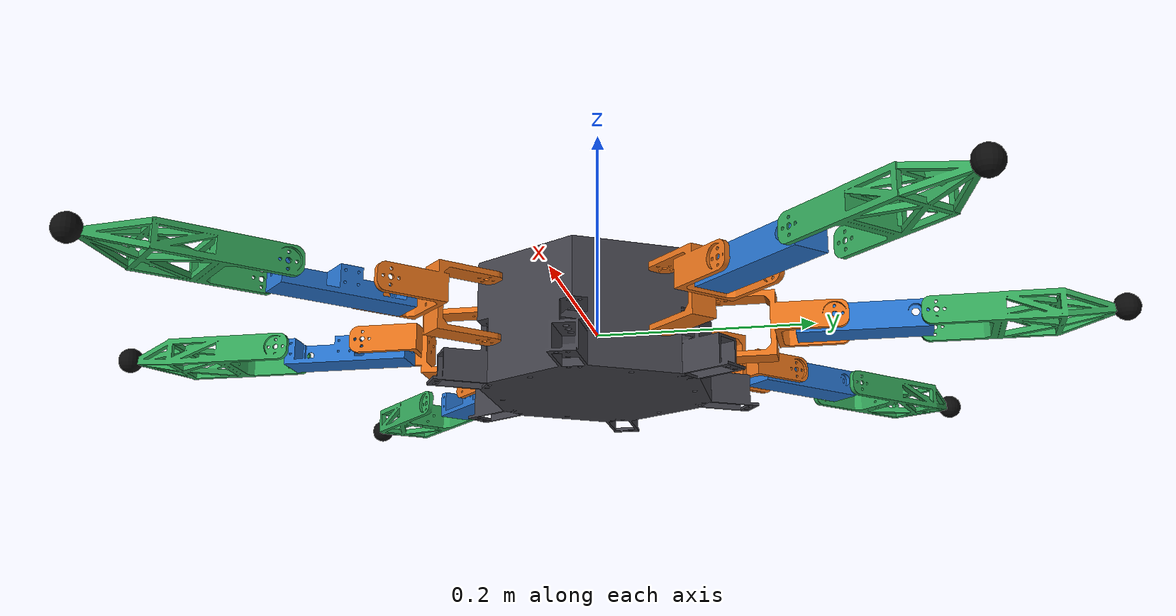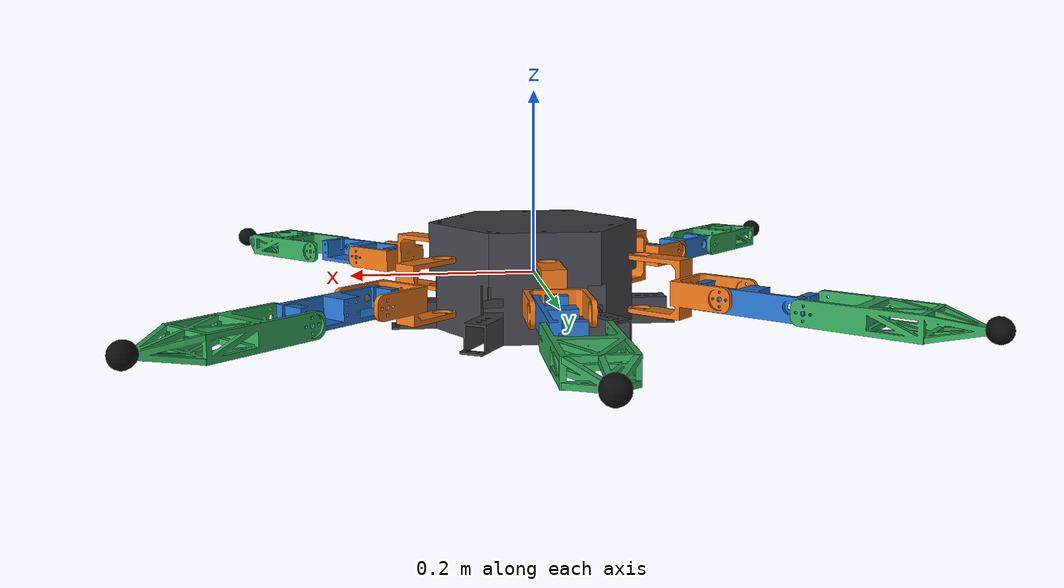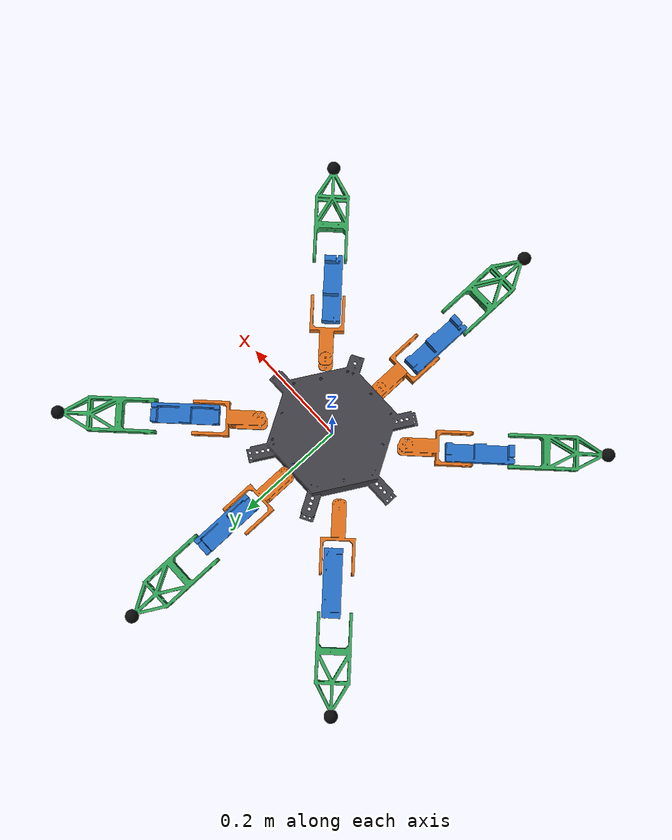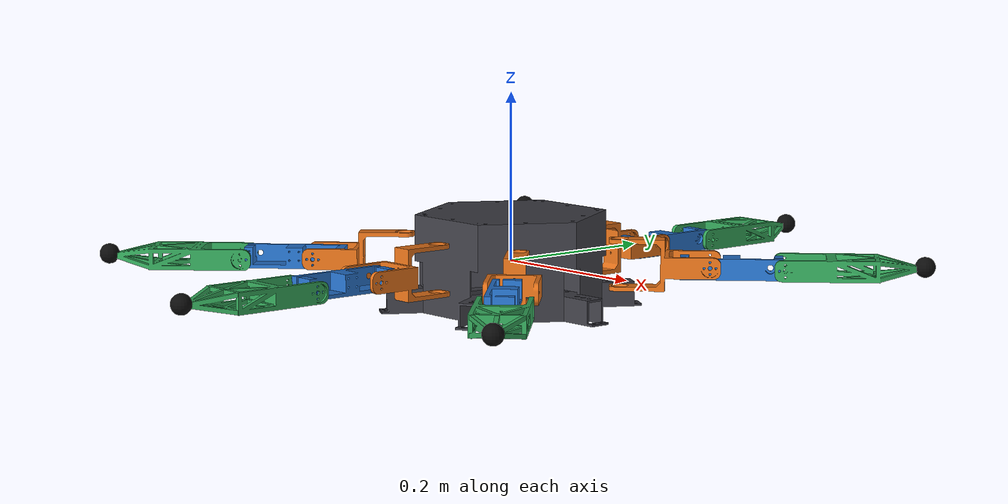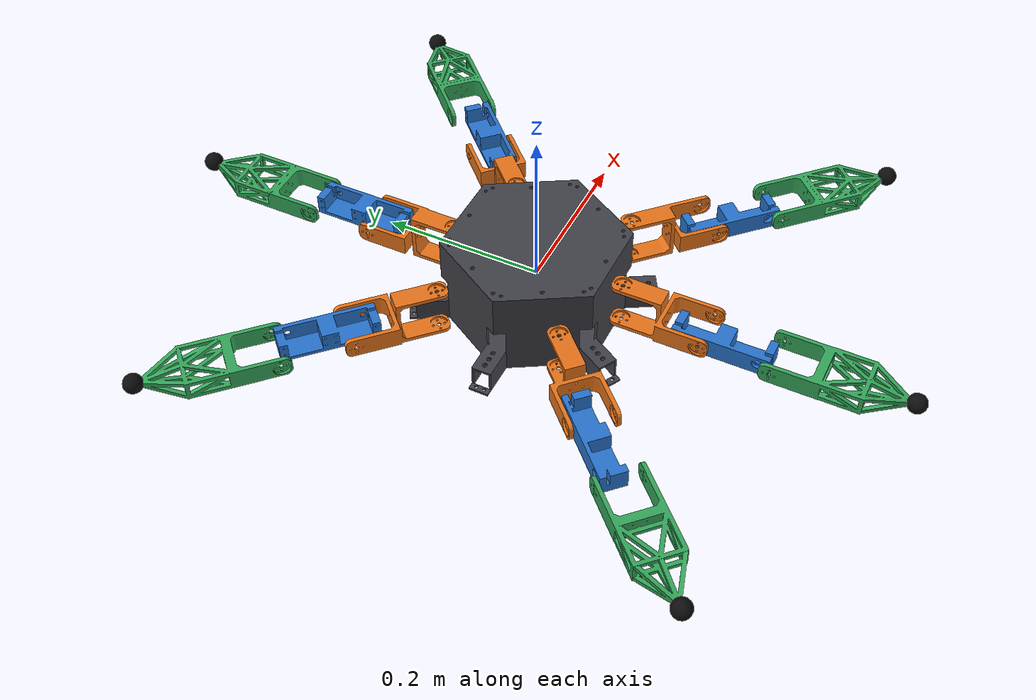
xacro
<?xml version="1.0"?>
<robot xmlns:xacro="http://www.ros.org/wiki/xacro" name="hexapod">

  <!-- Order matters: properties and macros must be defined before use. -->
  <xacro:include filename="$(find hexapod_description)/urdf/common_properties.xacro"/>
  <xacro:include filename="$(find hexapod_description)/urdf/leg_macro.xacro"/>

  <!-- Hardware abstraction. Gated so that RViz-only workflows and any future
       hardware bringup do not drag in the Gazebo plugin. Pass
       sim:=false to omit it. -->
  <xacro:arg name="control_mode" default="effort"/>

  <xacro:arg name="sim" default="true"/>
  <xacro:if value="$(arg sim)">
    <xacro:include filename="$(find hexapod_description)/urdf/hexapod.ros2_control.xacro"/>
    <xacro:include filename="$(find hexapod_description)/urdf/hexapod.gazebo.xacro"/>
  </xacro:if>

  <xacro:arg name="fix_base" default="false"/>
  <xacro:arg name="fix_base_height" default="0.125"/>
  <xacro:if value="$(arg fix_base)">
    <link name="world"/>
    <joint name="world_to_base" type="fixed">
      <parent link="world"/>
      <child link="base_link"/>
      <origin xyz="0 0 $(arg fix_base_height)" rpy="0 0 0"/>
    </joint>
  </xacro:if>

  <!-- ====================================================================
       BODY
  ==================================================================== -->
  <link name="base_link">
    <xacro:if value="${use_meshes}">
      <visual>
        <origin xyz="${body_mesh_nudge}" rpy="${body_mesh_rpy}"/>
        <geometry>
          <mesh filename="${mesh_dir}/body.stl" scale="${mesh_scale}"/>
        </geometry>
        <material name="body_grey"/>
      </visual>
    </xacro:if>
    <xacro:unless value="${use_meshes}">
      <visual>
        <origin xyz="0 0 0" rpy="0 0 0"/>
        <geometry>
          <box size="${body_length} ${body_width} ${body_height}"/>
        </geometry>
        <material name="body_grey"/>
      </visual>
    </xacro:unless>

    <collision>
      <origin xyz="0 0 0" rpy="0 0 0"/>
      <geometry>
        <box size="${body_length} ${body_width} ${body_height}"/>
      </geometry>
    </collision>

    <xacro:inertial_box mass="${body_mass}"
                        x="${body_length}" y="${body_width}" z="${body_height}">
      <origin xyz="0 0 0" rpy="0 0 0"/>
    </xacro:inertial_box>
  </link>

  <gazebo reference="base_link">
    <xacro:if value="${demo_mode}"><gravity>0</gravity></xacro:if>
    <material>Gazebo/DarkGrey</material>
  </gazebo>

  <!-- LEFT SIDE -->
  <xacro:hexapod_leg prefix="lf"
                     mount_x="${mount_x_front}"
                     mount_y="${mount_y_front}"
                     mount_z="${mount_z}"
                     mount_yaw="${mount_yaw_front}"/>

  <xacro:hexapod_leg prefix="lm"
                     mount_x="${mount_x_mid}"
                     mount_y="${mount_y_mid}"
                     mount_z="${mount_z}"
                     mount_yaw="${mount_yaw_mid}"/>

  <xacro:hexapod_leg prefix="lr"
                     mount_x="${mount_x_rear}"
                     mount_y="${mount_y_rear}"
                     mount_z="${mount_z}"
                     mount_yaw="${mount_yaw_rear}"/>

  <!-- RIGHT SIDE -->
  <xacro:hexapod_leg prefix="rf"
                     mount_x="${mount_x_front}"
                     mount_y="${-mount_y_front}"
                     mount_z="${mount_z}"
                     mount_yaw="${-mount_yaw_front}"/>

  <xacro:hexapod_leg prefix="rm"
                     mount_x="${mount_x_mid}"
                     mount_y="${-mount_y_mid}"
                     mount_z="${mount_z}"
                     mount_yaw="${-mount_yaw_mid}"/>

  <xacro:hexapod_leg prefix="rr"
                     mount_x="${mount_x_rear}"
                     mount_y="${-mount_y_rear}"
                     mount_z="${mount_z}"
                     mount_yaw="${-mount_yaw_rear}"/>

  <xacro:include filename="$(find hexapod_description)/urdf/hexapod.sensors.xacro"/>

</robot>

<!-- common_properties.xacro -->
<robot xmlns:xacro="http://www.ros.org/wiki/xacro">

  <!-- Body (chassis). Box approximation of the hexagonal frame. -->
  <xacro:property name="body_length" value="0.3127"/>  <!-- along +X, forward -->
  <xacro:property name="body_width"  value="0.2833"/>  <!-- along +Y, left    -->
  <xacro:property name="body_height" value="0.1150"/>  <!-- along +Z, up      -->

  <xacro:property name="coxa_length"  value="0.1172"/>
  <xacro:property name="femur_length" value="0.0911"/>
  <xacro:property name="tibia_length" value="0.1602"/>

  <!-- Half the mean cross section, so the primitive cylinder's second moment
       of area is a reasonable stand-in for the real part's. -->
  <xacro:property name="coxa_radius"  value="0.0191"/>
  <xacro:property name="femur_radius" value="0.0145"/>
  <xacro:property name="tibia_radius" value="0.0215"/>

  <xacro:property name="body_mass"  value="1.310"/>
  <xacro:property name="coxa_mass"  value="0.081"/>
  <xacro:property name="femur_mass" value="0.143"/>
  <xacro:property name="tibia_mass" value="0.056"/>

  <xacro:property name="mount_x_front" value="0.095"/>
  <xacro:property name="mount_x_mid"   value="0.000"/>
  <xacro:property name="mount_x_rear"  value="-0.095"/>

  <xacro:property name="mount_y_front" value="0.070"/>
  <xacro:property name="mount_y_mid"   value="0.100"/>
  <xacro:property name="mount_y_rear"  value="0.070"/>

  <!-- Height of the coxa axes relative to the body centre. Zero puts them
       on the mid plane. If your legs bolt to the underside of the top
       plate, this becomes negative. -->
  <xacro:property name="mount_z"       value="0.000"/>

  <!-- Splay angles in radians. Front legs point 45 deg outward and forward,
       middle legs straight out at 90 deg, rear legs at 135 deg. -->
  <xacro:property name="mount_yaw_front" value="${ 45.0 * pi / 180.0}"/>
  <xacro:property name="mount_yaw_mid"   value="${ 90.0 * pi / 180.0}"/>
  <xacro:property name="mount_yaw_rear"  value="${135.0 * pi / 180.0}"/>

  <xacro:property name="coxa_lower"  value="${ -60.0 * pi / 180.0}"/>
  <xacro:property name="coxa_upper"  value="${  60.0 * pi / 180.0}"/>
  <xacro:property name="femur_lower" value="${ -90.0 * pi / 180.0}"/>
  <xacro:property name="femur_upper" value="${  90.0 * pi / 180.0}"/>
  <xacro:property name="tibia_lower" value="${ -60.0 * pi / 180.0}"/>
  <xacro:property name="tibia_upper" value="${ 130.0 * pi / 180.0}"/>

  <xacro:property name="joint_effort"   value="7.0"/>
  <xacro:property name="joint_velocity" value="6.0"/>

  <xacro:property name="stance_coxa_angle"  value="0.0"/>
  <xacro:property name="stance_femur_angle" value="0.0865"/>
  <xacro:property name="stance_tibia_angle" value="1.3979"/>

  <xacro:property name="joint_damping"  value="0.5"/>
  <xacro:property name="joint_friction" value="1.5"/>

  <xacro:property name="foot_radius"   value="0.012"/>

  <xacro:property name="foot_mu"       value="2.0"/>

  <xacro:property name="enable_foot_sensors" value="false"/>

  <xacro:property name="use_meshes" value="true"/>
  <xacro:property name="mesh_scale" value="0.001 0.001 0.001"/>
  <xacro:property name="mesh_dir"
                  value="package://hexapod_description/meshes/visual"/>

  <xacro:property name="femur_upper_z" value="0.0"/>

  <xacro:property name="coxa_mesh_nudge"  value="0 0 0"/>
  <xacro:property name="femur_mesh_nudge" value="-0.020 0 0"/>
  <xacro:arg name="tibia_nudge" default="0 0 0"/>
  <xacro:property name="tibia_mesh_nudge" value="$(arg tibia_nudge)"/>
  <xacro:property name="body_mesh_nudge"  value="0 0 0"/>

  <xacro:arg name="coxa_rpy"  default="0 0 0"/>
  <xacro:arg name="femur_rpy" default="0 0 0"/>
  <xacro:arg name="tibia_rpy" default="0 0 0"/>
  <xacro:arg name="body_rpy"  default="0 0 0"/>

  <xacro:property name="coxa_mesh_rpy"  value="$(arg coxa_rpy)"/>
  <xacro:property name="femur_mesh_rpy" value="$(arg femur_rpy)"/>
  <xacro:property name="tibia_mesh_rpy" value="$(arg tibia_rpy)"/>
  <xacro:property name="body_mesh_rpy"  value="$(arg body_rpy)"/>

  <xacro:property name="show_joint_brackets" value="false"/>
  <xacro:property name="bracket_mesh" value="coxa.stl"/>

  <xacro:property name="femur_bracket_xyz" value="0 0 0"/>
  <xacro:property name="femur_bracket_rpy" value="0 0 0"/>
  <xacro:property name="tibia_bracket_xyz" value="0 0 0"/>
  <xacro:property name="tibia_bracket_rpy" value="0 0 0"/>

  <xacro:arg name="sim_profile" default="physical"/>
  <xacro:property name="sim_profile" value="$(arg sim_profile)"/>
  <xacro:property name="repo_mode"   value="${sim_profile == 'repo'}"/>

  <xacro:property name="demo_mode" value="${sim_profile == 'demo'}"/>

  <xacro:if value="${repo_mode}">
    <xacro:property name="body_mass"  value="0.00001"/>
    <xacro:property name="coxa_mass"  value="0.00001"/>
    <xacro:property name="femur_mass" value="0.00001"/>
    <xacro:property name="tibia_mass" value="0.00001"/>

    <xacro:property name="coxa_lower"  value="${-pi}"/>
    <xacro:property name="coxa_upper"  value="${ pi}"/>
    <xacro:property name="femur_lower" value="${-pi}"/>
    <xacro:property name="femur_upper" value="${ pi}"/>
    <xacro:property name="tibia_lower" value="${-pi}"/>
    <xacro:property name="tibia_upper" value="${ pi}"/>

    <!-- Their AX-12 style numbers: 6 N m, 0.524 rad/s. The velocity limit
         is 11x lower than ours and is doing real work in their model, by
         capping how fast a joint can be driven at all. -->
    <xacro:property name="joint_effort"   value="6.0"/>
    <xacro:property name="joint_velocity" value="0.524"/>

    <xacro:property name="joint_damping"  value="0.0"/>
    <xacro:property name="joint_friction" value="0.0"/>
  </xacro:if>

  <xacro:property name="repo_mesh_collision" value="false"/>

  <!-- Solid cuboid, sides x, y, z, about its centre. -->
  <xacro:macro name="inertial_box" params="mass x y z *origin">
    <xacro:if value="${repo_mode}">
      <inertial>
        <xacro:insert_block name="origin"/>
        <mass value="${mass}"/>
        <inertia ixx="1.0" ixy="0.0" ixz="0.0"
                 iyy="1.0" iyz="0.0"
                 izz="1.0"/>
      </inertial>
    </xacro:if>
    <xacro:unless value="${repo_mode}">
      <inertial>
        <xacro:insert_block name="origin"/>
        <mass value="${mass}"/>
        <inertia
          ixx="${(1.0/12.0) * mass * (y*y + z*z)}" ixy="0.0" ixz="0.0"
          iyy="${(1.0/12.0) * mass * (x*x + z*z)}" iyz="0.0"
          izz="${(1.0/12.0) * mass * (x*x + y*y)}"/>
      </inertial>
    </xacro:unless>
  </xacro:macro>

  <xacro:macro name="inertial_cylinder_x" params="mass radius length *origin">
    <xacro:if value="${repo_mode}">
      <inertial>
        <xacro:insert_block name="origin"/>
        <mass value="${mass}"/>
        <inertia ixx="1.0" ixy="0.0" ixz="0.0"
                 iyy="1.0" iyz="0.0"
                 izz="1.0"/>
      </inertial>
    </xacro:if>
    <xacro:unless value="${repo_mode}">
      <inertial>
        <xacro:insert_block name="origin"/>
        <mass value="${mass}"/>
        <inertia
          ixx="${0.5 * mass * radius * radius}" ixy="0.0" ixz="0.0"
          iyy="${(1.0/12.0) * mass * (3.0*radius*radius + length*length)}" iyz="0.0"
          izz="${(1.0/12.0) * mass * (3.0*radius*radius + length*length)}"/>
      </inertial>
    </xacro:unless>
  </xacro:macro>

  <!-- Solid sphere about its centre. Used for the foot contact pad. -->
  <xacro:macro name="inertial_sphere" params="mass radius *origin">
    <xacro:if value="${repo_mode}">
      <inertial>
        <xacro:insert_block name="origin"/>
        <mass value="0.00001"/>
        <inertia ixx="1.0" ixy="0.0" ixz="0.0"
                 iyy="1.0" iyz="0.0"
                 izz="1.0"/>
      </inertial>
    </xacro:if>
    <xacro:unless value="${repo_mode}">
      <inertial>
        <xacro:insert_block name="origin"/>
        <mass value="${mass}"/>
        <inertia
          ixx="${0.4 * mass * radius * radius}" ixy="0.0" ixz="0.0"
          iyy="${0.4 * mass * radius * radius}" iyz="0.0"
          izz="${0.4 * mass * radius * radius}"/>
      </inertial>
    </xacro:unless>
  </xacro:macro>

  <material name="body_grey">
    <color rgba="0.25 0.25 0.28 1.0"/>
  </material>
  <material name="coxa_orange">
    <color rgba="0.90 0.45 0.10 1.0"/>
  </material>
  <material name="femur_blue">
    <color rgba="0.15 0.45 0.80 1.0"/>
  </material>
  <material name="tibia_green">
    <color rgba="0.20 0.65 0.35 1.0"/>
  </material>
  <material name="foot_black">
    <color rgba="0.05 0.05 0.05 1.0"/>
  </material>

</robot>

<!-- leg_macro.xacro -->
<robot xmlns:xacro="http://www.ros.org/wiki/xacro">

  <xacro:macro name="hexapod_leg"
               params="prefix mount_x mount_y mount_z mount_yaw">

    <!-- ================================================================
         COXA. Attaches to the body, rotates about vertical Z.
    ================================================================ -->
    <link name="${prefix}_coxa_link">
      <xacro:if value="${use_meshes}">
        <visual>
          <origin xyz="${coxa_mesh_nudge}" rpy="${coxa_mesh_rpy}"/>
          <geometry>
            <mesh filename="${mesh_dir}/coxa.stl" scale="${mesh_scale}"/>
          </geometry>
          <material name="coxa_orange"/>
        </visual>
      </xacro:if>
      <xacro:unless value="${use_meshes}">
        <visual>
          <origin xyz="${coxa_length/2} 0 0" rpy="0 ${pi/2} 0"/>
          <geometry>
            <cylinder radius="${coxa_radius}" length="${coxa_length}"/>
          </geometry>
          <material name="coxa_orange"/>
        </visual>
      </xacro:unless>

      <!-- COLLISION: always a primitive. See the policy note in
           common_properties.xacro. -->
      <collision>
        <origin xyz="${coxa_length/2} 0 0" rpy="0 ${pi/2} 0"/>
        <geometry>
          <cylinder radius="${coxa_radius}" length="${coxa_length}"/>
        </geometry>
      </collision>

      <!-- Inertia is about the segment's centre of mass, which for a
           uniform cylinder is its midpoint, hence the same x offset. -->
      <xacro:inertial_cylinder_x mass="${coxa_mass}"
                                 radius="${coxa_radius}"
                                 length="${coxa_length}">
        <origin xyz="${coxa_length/2} 0 0" rpy="0 0 0"/>
      </xacro:inertial_cylinder_x>
    </link>

    <joint name="${prefix}_coxa_joint" type="revolute">
      <parent link="base_link"/>
      <child  link="${prefix}_coxa_link"/>
      <!-- This origin is the ONLY thing that differs between the six legs.
           The yaw splays the leg outward; everything downstream is
           identical. -->
      <origin xyz="${mount_x} ${mount_y} ${mount_z}" rpy="0 0 ${mount_yaw}"/>
      <axis xyz="0 0 1"/>
      <limit lower="${coxa_lower}" upper="${coxa_upper}"
             effort="${joint_effort}" velocity="${joint_velocity}"/>
      <dynamics damping="${joint_damping}" friction="${joint_friction}"/>
    </joint>

    <!-- ================================================================
         FEMUR. The lift joint.
    ================================================================ -->
    <link name="${prefix}_femur_link">
      <xacro:if value="${use_meshes}">
        <visual>
          <origin xyz="${femur_mesh_nudge}" rpy="${femur_mesh_rpy}"/>
          <geometry>
            <mesh filename="${mesh_dir}/femur.stl" scale="${mesh_scale}"/>
          </geometry>
          <material name="femur_blue"/>
        </visual>

        <xacro:if value="${show_joint_brackets}">
          <visual>
            <origin xyz="${femur_bracket_xyz}" rpy="${femur_bracket_rpy}"/>
            <geometry>
              <mesh filename="${mesh_dir}/${bracket_mesh}" scale="${mesh_scale}"/>
            </geometry>
            <material name="coxa_orange"/>
          </visual>
        </xacro:if>
      </xacro:if>
      <xacro:unless value="${use_meshes}">
        <visual>
          <origin xyz="${femur_length/2} 0 0" rpy="0 ${pi/2} 0"/>
          <geometry>
            <cylinder radius="${femur_radius}" length="${femur_length}"/>
          </geometry>
          <material name="femur_blue"/>
        </visual>
      </xacro:unless>

      <collision>
        <origin xyz="${femur_length/2} 0 0" rpy="0 ${pi/2} 0"/>
        <geometry>
          <cylinder radius="${femur_radius}" length="${femur_length}"/>
        </geometry>
      </collision>

      <xacro:inertial_cylinder_x mass="${femur_mass}"
                                 radius="${femur_radius}"
                                 length="${femur_length}">
        <origin xyz="${femur_length/2} 0 0" rpy="0 0 0"/>
      </xacro:inertial_cylinder_x>
    </link>

    <joint name="${prefix}_femur_joint" type="revolute">
      <parent link="${prefix}_coxa_link"/>
      <child  link="${prefix}_femur_link"/>
      <!-- Sits at the far end of the coxa: the +X segment rule in action. -->
      <origin xyz="${coxa_length} 0 0" rpy="0 0 0"/>
      <axis xyz="0 1 0"/>
      <limit lower="${femur_lower}" upper="${femur_upper}"
             effort="${joint_effort}" velocity="${joint_velocity}"/>
      <dynamics damping="${joint_damping}" friction="${joint_friction}"/>
    </joint>

    <!-- ================================================================
         TIBIA. The extend joint, carries the foot.
    ================================================================ -->
    <link name="${prefix}_tibia_link">
      <xacro:if value="${use_meshes}">
        <visual>
          <origin xyz="${tibia_mesh_nudge}" rpy="${tibia_mesh_rpy}"/>
          <geometry>
            <mesh filename="${mesh_dir}/tibia.stl" scale="${mesh_scale}"/>
          </geometry>
          <material name="tibia_green"/>
        </visual>

        <!-- Third instance of the same bracket. Its 21 g is in tibia_mass. -->
        <xacro:if value="${show_joint_brackets}">
          <visual>
            <origin xyz="${tibia_bracket_xyz}" rpy="${tibia_bracket_rpy}"/>
            <geometry>
              <mesh filename="${mesh_dir}/${bracket_mesh}" scale="${mesh_scale}"/>
            </geometry>
            <material name="coxa_orange"/>
          </visual>
        </xacro:if>
      </xacro:if>
      <xacro:unless value="${use_meshes}">
        <visual>
          <origin xyz="${tibia_length/2} 0 0" rpy="0 ${pi/2} 0"/>
          <geometry>
            <cylinder radius="${tibia_radius}" length="${tibia_length}"/>
          </geometry>
          <material name="tibia_green"/>
        </visual>
      </xacro:unless>

      <collision>
        <origin xyz="${tibia_length/2} 0 0" rpy="0 ${pi/2} 0"/>
        <geometry>
          <cylinder radius="${tibia_radius}" length="${tibia_length}"/>
        </geometry>
      </collision>

      <xacro:inertial_cylinder_x mass="${tibia_mass}"
                                 radius="${tibia_radius}"
                                 length="${tibia_length}">
        <origin xyz="${tibia_length/2} 0 0" rpy="0 0 0"/>
      </xacro:inertial_cylinder_x>
    </link>

    <joint name="${prefix}_tibia_joint" type="revolute">
      <parent link="${prefix}_femur_link"/>
      <child  link="${prefix}_tibia_link"/>
      <origin xyz="${femur_length} 0 0" rpy="0 0 0"/>
      <axis xyz="0 1 0"/>
      <limit lower="${tibia_lower}" upper="${tibia_upper}"
             effort="${joint_effort}" velocity="${joint_velocity}"/>
      <dynamics damping="${joint_damping}" friction="${joint_friction}"/>
    </joint>

    <link name="${prefix}_foot_link">
      <visual>
        <origin xyz="0 0 0" rpy="0 0 0"/>
        <geometry>
          <sphere radius="${foot_radius}"/>
        </geometry>
        <material name="foot_black"/>
      </visual>

      <collision>
        <origin xyz="0 0 0" rpy="0 0 0"/>
        <geometry>
          <sphere radius="${foot_radius}"/>
        </geometry>
      </collision>

      <xacro:inertial_sphere mass="0.010" radius="${foot_radius}">
        <origin xyz="0 0 0" rpy="0 0 0"/>
      </xacro:inertial_sphere>
    </link>

    <joint name="${prefix}_foot_joint" type="fixed">
      <parent link="${prefix}_tibia_link"/>
      <child  link="${prefix}_foot_link"/>
      <origin xyz="${tibia_length} 0 0" rpy="0 0 0"/>
    </joint>

    <gazebo reference="${prefix}_foot_link">
      <xacro:if value="${demo_mode}"><gravity>0</gravity></xacro:if>
      <mu1>${foot_mu}</mu1>
      <mu2>${foot_mu}</mu2>

      <kp>50000.0</kp>
      <kd>500.0</kd>

      <!-- Allowed penetration before corrective force. A small tolerance
           stops contacts flickering on and off between steps. -->
      <minDepth>0.001</minDepth>

      <maxVel>0.01</maxVel>

      <material>Gazebo/Black</material>
    </gazebo>

    <xacro:if value="${enable_foot_sensors}">
      <gazebo reference="${prefix}_foot_joint">
        <disableFixedJointLumping>true</disableFixedJointLumping>
        <preserveFixedJoint>true</preserveFixedJoint>
      </gazebo>

      <gazebo reference="${prefix}_foot_link">
        <sensor name="${prefix}_foot_contact" type="contact">
          <always_on>true</always_on>
          <update_rate>100.0</update_rate>
          <contact>
            <collision>${prefix}_foot_link_collision</collision>
          </contact>
          <plugin name="${prefix}_foot_bumper" filename="libgazebo_ros_bumper.so">
            <ros>
              <namespace>/hexapod</namespace>
              <remapping>bumper_states:=feet/${prefix}/contact</remapping>
            </ros>
            <frame_name>${prefix}_foot_link</frame_name>
          </plugin>
        </sensor>
      </gazebo>
    </xacro:if>

    <gazebo reference="${prefix}_coxa_link">
      <xacro:if value="${demo_mode}"><gravity>0</gravity></xacro:if>
      <material>Gazebo/Orange</material>
    </gazebo>
    <gazebo reference="${prefix}_femur_link">
      <xacro:if value="${demo_mode}"><gravity>0</gravity></xacro:if>
      <material>Gazebo/Blue</material>
    </gazebo>
    <gazebo reference="${prefix}_tibia_link">
      <xacro:if value="${demo_mode}"><gravity>0</gravity></xacro:if>
      <material>Gazebo/Green</material>
    </gazebo>

  </xacro:macro>

</robot>

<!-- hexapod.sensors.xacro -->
<robot xmlns:xacro="http://www.ros.org/wiki/xacro">

  <xacro:arg name="enable_imu"    default="true"/>
  <xacro:arg name="enable_camera" default="false"/>
  <xacro:arg name="enable_lidar"  default="false"/>

  <xacro:property name="use_imu"    value="$(arg enable_imu)"/>
  <xacro:property name="use_camera" value="$(arg enable_camera)"/>
  <xacro:property name="use_lidar"  value="$(arg enable_lidar)"/>

  <xacro:property name="cam_x"   value="${body_length/2}"/>
  <xacro:property name="cam_z"   value="0.0"/>
  <xacro:property name="cam_pitch" value="${25.0 * pi / 180.0}"/>
  <xacro:property name="lidar_z" value="${body_height/2 + 0.030}"/>

  <material name="sensor_black">
    <color rgba="0.08 0.08 0.10 1.0"/>
  </material>

  <xacro:if value="${use_imu}">
    <link name="imu_link">
      <visual>
        <geometry><box size="0.020 0.020 0.005"/></geometry>
        <material name="sensor_black"/>
      </visual>
      <xacro:inertial_box mass="0.020" x="0.020" y="0.020" z="0.005">
        <origin xyz="0 0 0" rpy="0 0 0"/>
      </xacro:inertial_box>
    </link>

    <joint name="imu_joint" type="fixed">
      <parent link="base_link"/>
      <child  link="imu_link"/>
      <origin xyz="0 0 0" rpy="0 0 0"/>
    </joint>

    <gazebo reference="imu_link">
      <sensor name="imu_sensor" type="imu">
        <always_on>true</always_on>
        <update_rate>100</update_rate>
        <visualize>false</visualize>
        <imu>
          <angular_velocity>
            <x><noise type="gaussian"><mean>0.0</mean><stddev>2e-4</stddev></noise></x>
            <y><noise type="gaussian"><mean>0.0</mean><stddev>2e-4</stddev></noise></y>
            <z><noise type="gaussian"><mean>0.0</mean><stddev>2e-4</stddev></noise></z>
          </angular_velocity>
          <linear_acceleration>
            <x><noise type="gaussian"><mean>0.0</mean><stddev>1.7e-2</stddev></noise></x>
            <y><noise type="gaussian"><mean>0.0</mean><stddev>1.7e-2</stddev></noise></y>
            <z><noise type="gaussian"><mean>0.0</mean><stddev>1.7e-2</stddev></noise></z>
          </linear_acceleration>
        </imu>
        <plugin name="imu_plugin" filename="libgazebo_ros_imu_sensor.so">
          <ros>
            <namespace>/</namespace>
            <remapping>~/out:=imu/data</remapping>
          </ros>
          <initial_orientation_as_reference>false</initial_orientation_as_reference>
          <frame_name>imu_link</frame_name>
        </plugin>
      </sensor>
    </gazebo>
  </xacro:if>

  <xacro:if value="${use_camera}">
    <link name="camera_link">
      <visual>
        <geometry><box size="0.015 0.030 0.030"/></geometry>
        <material name="sensor_black"/>
      </visual>
      <xacro:inertial_box mass="0.050" x="0.015" y="0.030" z="0.030">
        <origin xyz="0 0 0" rpy="0 0 0"/>
      </xacro:inertial_box>
    </link>

    <joint name="camera_joint" type="fixed">
      <parent link="base_link"/>
      <child  link="camera_link"/>
      <origin xyz="${cam_x} 0 ${cam_z}" rpy="0 ${cam_pitch} 0"/>
    </joint>

    <link name="camera_optical_link"/>
    <joint name="camera_optical_joint" type="fixed">
      <parent link="camera_link"/>
      <child  link="camera_optical_link"/>
      <origin xyz="0 0 0" rpy="${-pi/2} 0 ${-pi/2}"/>
    </joint>

    <gazebo reference="camera_link">
      <material>Gazebo/Black</material>
      <sensor name="front_camera" type="camera">
        <always_on>true</always_on>
        <!-- 15 Hz, not 30. Detection runs far slower than this anyway, and
             every frame is a full render of the world. -->
        <update_rate>15.0</update_rate>
        <visualize>false</visualize>
        <camera name="front">
          <horizontal_fov>1.0472</horizontal_fov>
          <image>
            <width>640</width>
            <height>480</height>
            <format>R8G8B8</format>
          </image>
          <clip>
            <near>0.02</near>
            <far>30.0</far>
          </clip>
          <noise>
            <type>gaussian</type>
            <mean>0.0</mean>
            <stddev>0.007</stddev>
          </noise>
        </camera>
        <plugin name="camera_controller" filename="libgazebo_ros_camera.so">
          <ros>
            <namespace>/</namespace>
          </ros>
          <camera_name>camera</camera_name>
          <frame_name>camera_optical_link</frame_name>
          <hack_baseline>0.0</hack_baseline>
        </plugin>
      </sensor>
    </gazebo>
  </xacro:if>

  <xacro:if value="${use_lidar}">
    <link name="lidar_link">
      <visual>
        <geometry><cylinder radius="0.035" length="0.040"/></geometry>
        <material name="sensor_black"/>
      </visual>
      <collision>
        <geometry><cylinder radius="0.035" length="0.040"/></geometry>
      </collision>
      <inertial>
        <mass value="0.170"/>
        <!-- Solid cylinder about Z: Ixx = Iyy = m(3r^2 + h^2)/12,
             Izz = m r^2 / 2. Written out rather than reusing
             inertial_cylinder_x, whose axis of symmetry is X. -->
        <inertia ixx="6.47e-5" ixy="0.0" ixz="0.0"
                 iyy="6.47e-5" iyz="0.0"
                 izz="1.04e-4"/>
      </inertial>
    </link>

    <joint name="lidar_joint" type="fixed">
      <parent link="base_link"/>
      <child  link="lidar_link"/>
      <origin xyz="0 0 ${lidar_z}" rpy="0 0 0"/>
    </joint>

    <gazebo reference="lidar_link">
      <material>Gazebo/Black</material>
      <sensor name="lidar" type="ray">
        <always_on>true</always_on>
        <update_rate>10</update_rate>
        <!-- Set true to see the blue fan in the Gazebo window. Costs frame
             rate, so it is a debugging aid and not a default. -->
        <visualize>false</visualize>
        <ray>
          <scan>
            <horizontal>
              <samples>360</samples>
              <resolution>1</resolution>
              <min_angle>-3.14159</min_angle>
              <max_angle>3.14159</max_angle>
            </horizontal>
          </scan>
          <range>
            <min>0.12</min>
            <max>12.0</max>
            <resolution>0.015</resolution>
          </range>
          <noise>
            <type>gaussian</type>
            <mean>0.0</mean>
            <stddev>0.01</stddev>
          </noise>
        </ray>
        <plugin name="lidar_controller" filename="libgazebo_ros_ray_sensor.so">
          <ros>
            <namespace>/</namespace>
            <remapping>~/out:=scan</remapping>
          </ros>
          <output_type>sensor_msgs/LaserScan</output_type>
          <frame_name>lidar_link</frame_name>
        </plugin>
      </sensor>
    </gazebo>
  </xacro:if>

</robot>
